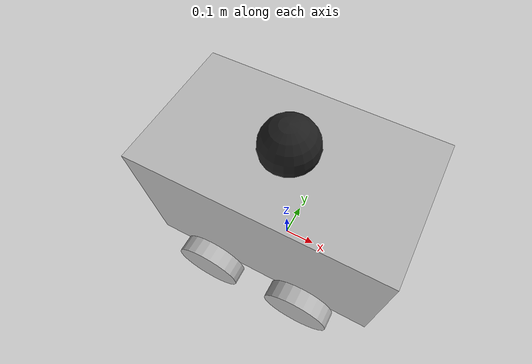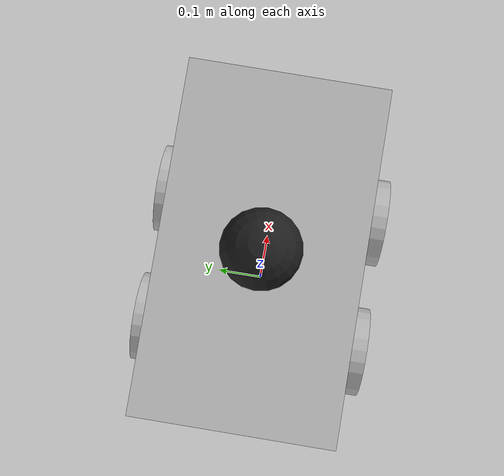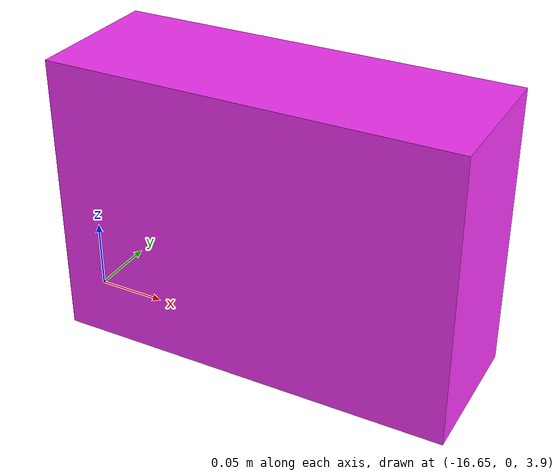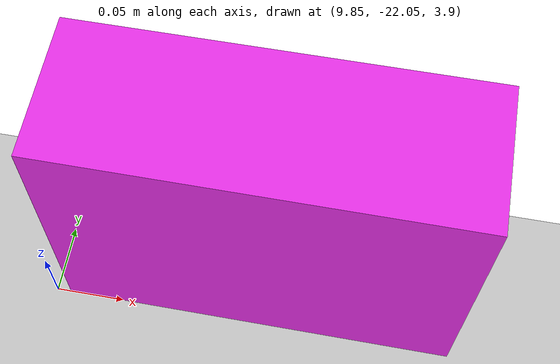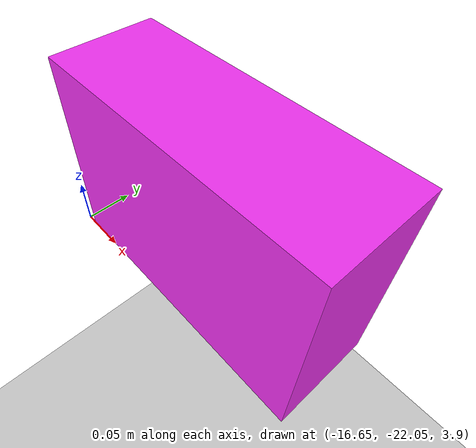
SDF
<sdf version="1.7">
 <world name="default">
  <gravity>0 0 -9.8</gravity>
  <physics name="default_physics" default="0" type="ode">
   <max_step_size>0.001</max_step_size>
   <real_time_factor>1</real_time_factor>
   <real_time_update_rate>1000</real_time_update_rate>
  </physics>
  <plugin name="gazebo_ros_state" filename="libgazebo_ros_state.so">
   <ros><namespace>/gazebo</namespace></ros>
   <update_rate>10.0</update_rate>
  </plugin>
  <magnetic_field>6e-06 2.3e-05 -4.2e-05</magnetic_field>
  <atmosphere type="adiabatic"/>
  <scene><ambient>0.4 0.4 0.4 1</ambient><background>0.7 0.7 0.7 1</background><shadows>1</shadows></scene>
  <audio><device>default</device></audio>
  <spherical_coordinates>
   <surface_model>EARTH_WGS84</surface_model>
   <latitude_deg>0</latitude_deg>
   <longitude_deg>0</longitude_deg>
   <elevation>0</elevation>
   <heading_deg>0</heading_deg>
  </spherical_coordinates>
  <model name="ground_plane">
   <static>1</static>
   <link name="link">
    <collision name="collision">
     <geometry><plane><normal>0 0 1</normal><size>100 100</size></plane></geometry>
     <surface><friction><ode><mu>100</mu><mu2>50</mu2></ode></friction></surface>
    </collision>
    <visual name="visual">
     <cast_shadows>0</cast_shadows>
     <geometry><plane><normal>0 0 1</normal><size>100 100</size></plane></geometry>
     <material>
      <script><uri>file://media/materials/scripts/gazebo.material</uri><name>Gazebo/Grey</name></script>
     </material>
    </visual>
   </link>
   <pose>-2.36225 2.26229 0 0 -0 0</pose>
  </model>
  <model name="uwb_tag_A01">
   <static>1</static>
   <pose>-16.5 -22.0 4.0 0 0 0</pose>
   <link name="tag">
    <visual name="visual">
     <geometry><box><size>0.28 0.10 0.20</size></box></geometry>
     <material>
      <ambient>0.95 0.20 0.95 1</ambient>
      <diffuse>0.95 0.20 0.95 1</diffuse>
      <emissive>0.20 0.02 0.20 1</emissive>
     </material>
    </visual>
   </link>
  </model>
  <model name="uwb_tag_A02">
   <static>1</static>
   <pose>-3.0 -22.0 4.0 0 0 0</pose>
   <link name="tag">
    <visual name="visual">
     <geometry><box><size>0.28 0.10 0.20</size></box></geometry>
     <material>
      <ambient>0.95 0.20 0.95 1</ambient>
      <diffuse>0.95 0.20 0.95 1</diffuse>
      <emissive>0.20 0.02 0.20 1</emissive>
     </material>
    </visual>
   </link>
  </model>
  <model name="uwb_tag_A03">
   <static>1</static>
   <pose>10.0 -22.0 4.0 0 0 0</pose>
   <link name="tag">
    <visual name="visual">
     <geometry><box><size>0.28 0.10 0.20</size></box></geometry>
     <material>
      <ambient>0.95 0.20 0.95 1</ambient>
      <diffuse>0.95 0.20 0.95 1</diffuse>
      <emissive>0.20 0.02 0.20 1</emissive>
     </material>
    </visual>
   </link>
  </model>
  <model name="uwb_tag_A04">
   <static>1</static>
   <pose>-16.5 0.0 4.0 0 0 0</pose>
   <link name="tag">
    <visual name="visual">
     <geometry><box><size>0.28 0.10 0.20</size></box></geometry>
     <material>
      <ambient>0.95 0.20 0.95 1</ambient>
      <diffuse>0.95 0.20 0.95 1</diffuse>
      <emissive>0.20 0.02 0.20 1</emissive>
     </material>
    </visual>
   </link>
  </model>
  <model name="uwb_tag_A05">
   <static>1</static>
   <pose>10.0 0.0 4.0 0 0 0</pose>
   <link name="tag">
    <visual name="visual">
     <geometry><box><size>0.28 0.10 0.20</size></box></geometry>
     <material>
      <ambient>0.95 0.20 0.95 1</ambient>
      <diffuse>0.95 0.20 0.95 1</diffuse>
      <emissive>0.20 0.02 0.20 1</emissive>
     </material>
    </visual>
   </link>
  </model>
  <model name="uwb_tag_A06">
   <static>1</static>
   <pose>-16.5 21.0 4.0 0 0 0</pose>
   <link name="tag">
    <visual name="visual">
     <geometry><box><size>0.28 0.10 0.20</size></box></geometry>
     <material>
      <ambient>0.95 0.20 0.95 1</ambient>
      <diffuse>0.95 0.20 0.95 1</diffuse>
      <emissive>0.20 0.02 0.20 1</emissive>
     </material>
    </visual>
   </link>
  </model>
  <model name="uwb_tag_A07">
   <static>1</static>
   <pose>-3.0 21.0 4.0 0 0 0</pose>
   <link name="tag">
    <visual name="visual">
     <geometry><box><size>0.28 0.10 0.20</size></box></geometry>
     <material>
      <ambient>0.95 0.20 0.95 1</ambient>
      <diffuse>0.95 0.20 0.95 1</diffuse>
      <emissive>0.20 0.02 0.20 1</emissive>
     </material>
    </visual>
   </link>
  </model>
  <model name="uwb_tag_A08">
   <static>1</static>
   <pose>10.0 21.0 4.0 0 0 0</pose>
   <link name="tag">
    <visual name="visual">
     <geometry><box><size>0.28 0.10 0.20</size></box></geometry>
     <material>
      <ambient>0.95 0.20 0.95 1</ambient>
      <diffuse>0.95 0.20 0.95 1</diffuse>
      <emissive>0.20 0.02 0.20 1</emissive>
     </material>
    </visual>
   </link>
  </model>
  <light name="sun" type="directional">
   <pose>8.50524 13.8183 10 0 -0 0</pose>
   <diffuse>0.8 0.8 0.8 1</diffuse>
   <specular>0.2 0.2 0.2 1</specular>
   <attenuation>
    <range>1000</range>
    <constant>0.9</constant>
    <linear>0.01</linear>
    <quadratic>0.001</quadratic>
   </attenuation>
   <direction>-0.5 0.1 -0.9</direction>
   <spot><inner_angle>0</inner_angle><outer_angle>0</outer_angle><falloff>0</falloff></spot>
  </light>
  <model name="my_robot">
   <link name="base_footprint">
    <inertial>
     <pose>0 0 0.305366 0 -0 0</pose>
     <mass>6.15</mass>
     <inertia><ixx>0.167483</ixx><ixy>0</ixy><ixz>0</ixz><iyy>0.167483</iyy><iyz>0</iyz><izz>0.1604</izz></inertia>
    </inertial>
    <collision name="base_footprint_fixed_joint_lump__base_link_collision">
     <pose>0 0 0.3 0 -0 0</pose>
     <geometry><box><size>0.4 0.4 0.4</size></box></geometry>
    </collision>
    <collision name="base_footprint_fixed_joint_lump__lidar_link_collision_1">
     <pose>0 0 0.52 0 -0 0</pose>
     <geometry><sphere><radius>0.08</radius></sphere></geometry>
    </collision>
    <visual name="base_footprint_fixed_joint_lump__base_link_visual">
     <pose>0 0 0.3 0 -0 0</pose>
     <geometry><box><size>0.7 0.4 0.4</size></box></geometry>
    </visual>
    <visual name="base_footprint_fixed_joint_lump__lidar_link_visual_1">
     <pose>0 0 0.52 0 -0 0</pose>
     <geometry><sphere><radius>0.08</radius></sphere></geometry>
     <material>
      <script><name>Gazebo/Black</name><uri>file://media/materials/scripts/gazebo.material</uri></script>
     </material>
    </visual>
    <sensor name="imu_sensor" type="imu">
     <always_on>1</always_on>
     <update_rate>100</update_rate>
     <visualize>0</visualize>
     <plugin name="imu_plugin" filename="libgazebo_ros_imu_sensor.so">
      <ros><remapping>~/out:=imu/data</remapping></ros>
      <initial_orientation_as_reference>0</initial_orientation_as_reference>
     </plugin>
     <pose>0 0 0.3 0 -0 0</pose>
    </sensor>
    <sensor name="lidar_3d_sensor" type="gpu_ray">
     <visualize>0</visualize>
     <update_rate>10</update_rate>
     <ray>
      <scan>
       <horizontal>
        <samples>720</samples>
        <resolution>1</resolution>
        <min_angle>-3.14159</min_angle>
        <max_angle>3.14159</max_angle>
       </horizontal>
       <vertical>
        <samples>64</samples>
        <resolution>1</resolution>
        <min_angle>-0.523599</min_angle>
        <max_angle>0.785398</max_angle>
       </vertical>
      </scan>
      <range><min>0.4</min><max>12</max><resolution>0.02</resolution></range>
      <noise><type>gaussian</type><mean>0</mean><stddev>0.01</stddev></noise>
     </ray>
     <plugin name="gazebo_ros_lidar_3d" filename="libgazebo_ros_ray_sensor.so">
      <ros><remapping>~/out:=/points</remapping></ros>
      <output_type>sensor_msgs/PointCloud2</output_type>
      <frame_name>lidar_link</frame_name>
     </plugin>
     <pose>0 0 0.52 0 -0 0</pose>
    </sensor>
   </link>
   <joint name="front_left_wheel_joint" type="revolute">
    <pose relative_to="base_footprint">0.15 0.235 0.1 0 -0 0</pose>
    <parent>base_footprint</parent>
    <child>front_left_wheel</child>
    <axis>
     <xyz>0 1 0</xyz>
     <limit><lower>-1e+16</lower><upper>1e+16</upper></limit>
     <dynamics>
      <damping>0.01</damping>
      <friction>0</friction>
      <spring_reference>0</spring_reference>
      <spring_stiffness>0</spring_stiffness>
     </dynamics>
    </axis>
   </joint>
   <link name="front_left_wheel">
    <pose relative_to="front_left_wheel_joint">0 0 0 0 -0 0</pose>
    <inertial>
     <mass>0.5</mass>
     <inertia>
      <ixx>0.00135417</ixx>
      <ixy>0</ixy>
      <ixz>0</ixz>
      <iyy>0.00135417</iyy>
      <iyz>0</iyz>
      <izz>0.0025</izz>
     </inertia>
    </inertial>
    <collision name="front_left_wheel_collision">
     <pose>0 0 0 1.5708 -0 0</pose>
     <geometry><cylinder><length>0.05</length><radius>0.1</radius></cylinder></geometry>
     <surface>
      <contact><ode><kp>100000</kp><kd>50</kd><max_vel>0.1</max_vel><min_depth>0.001</min_depth></ode></contact>
      <friction><ode><mu>0.05</mu><mu2>0.05</mu2></ode></friction>
     </surface>
    </collision>
    <visual name="front_left_wheel_visual">
     <pose>0 0 0 1.5708 -0 0</pose>
     <geometry><cylinder><length>0.05</length><radius>0.1</radius></cylinder></geometry>
    </visual>
   </link>
   <joint name="front_right_wheel_joint" type="revolute">
    <pose relative_to="base_footprint">0.15 -0.235 0.1 0 -0 0</pose>
    <parent>base_footprint</parent>
    <child>front_right_wheel</child>
    <axis>
     <xyz>0 1 0</xyz>
     <limit><lower>-1e+16</lower><upper>1e+16</upper></limit>
     <dynamics>
      <damping>0.01</damping>
      <friction>0</friction>
      <spring_reference>0</spring_reference>
      <spring_stiffness>0</spring_stiffness>
     </dynamics>
    </axis>
   </joint>
   <link name="front_right_wheel">
    <pose relative_to="front_right_wheel_joint">0 0 0 0 -0 0</pose>
    <inertial>
     <mass>0.5</mass>
     <inertia>
      <ixx>0.00135417</ixx>
      <ixy>0</ixy>
      <ixz>0</ixz>
      <iyy>0.00135417</iyy>
      <iyz>0</iyz>
      <izz>0.0025</izz>
     </inertia>
    </inertial>
    <collision name="front_right_wheel_collision">
     <pose>0 0 0 1.5708 -0 0</pose>
     <geometry><cylinder><length>0.05</length><radius>0.1</radius></cylinder></geometry>
     <surface>
      <contact><ode><kp>100000</kp><kd>50</kd><max_vel>0.1</max_vel><min_depth>0.001</min_depth></ode></contact>
      <friction><ode><mu>0.05</mu><mu2>0.05</mu2></ode></friction>
     </surface>
    </collision>
    <visual name="front_right_wheel_visual">
     <pose>0 0 0 1.5708 -0 0</pose>
     <geometry><cylinder><length>0.05</length><radius>0.1</radius></cylinder></geometry>
    </visual>
   </link>
   <joint name="rear_left_wheel_joint" type="revolute">
    <pose relative_to="base_footprint">-0.15 0.235 0.1 0 -0 0</pose>
    <parent>base_footprint</parent>
    <child>rear_left_wheel</child>
    <axis>
     <xyz>0 1 0</xyz>
     <limit><lower>-1e+16</lower><upper>1e+16</upper></limit>
     <dynamics>
      <damping>0.1</damping>
      <friction>0.01</friction>
      <spring_reference>0</spring_reference>
      <spring_stiffness>0</spring_stiffness>
     </dynamics>
    </axis>
   </joint>
   <link name="rear_left_wheel">
    <pose relative_to="rear_left_wheel_joint">0 0 0 0 -0 0</pose>
    <inertial>
     <mass>0.5</mass>
     <inertia>
      <ixx>0.00135417</ixx>
      <ixy>0</ixy>
      <ixz>0</ixz>
      <iyy>0.00135417</iyy>
      <iyz>0</iyz>
      <izz>0.0025</izz>
     </inertia>
    </inertial>
    <collision name="rear_left_wheel_collision">
     <pose>0 0 0 1.5708 -0 0</pose>
     <geometry><cylinder><length>0.05</length><radius>0.1</radius></cylinder></geometry>
     <surface>
      <contact><ode><kp>100000</kp><kd>100</kd><max_vel>0.1</max_vel><min_depth>0.001</min_depth></ode></contact>
      <friction><ode><mu>2</mu><mu2>2</mu2></ode></friction>
     </surface>
    </collision>
    <visual name="rear_left_wheel_visual">
     <pose>0 0 0 1.5708 -0 0</pose>
     <geometry><cylinder><length>0.05</length><radius>0.1</radius></cylinder></geometry>
    </visual>
   </link>
   <joint name="rear_right_wheel_joint" type="revolute">
    <pose relative_to="base_footprint">-0.15 -0.235 0.1 0 -0 0</pose>
    <parent>base_footprint</parent>
    <child>rear_right_wheel</child>
    <axis>
     <xyz>0 1 0</xyz>
     <limit><lower>-1e+16</lower><upper>1e+16</upper></limit>
     <dynamics>
      <damping>0.1</damping>
      <friction>0.1</friction>
      <spring_reference>0</spring_reference>
      <spring_stiffness>0</spring_stiffness>
     </dynamics>
    </axis>
   </joint>
   <link name="rear_right_wheel">
    <pose relative_to="rear_right_wheel_joint">0 0 0 0 -0 0</pose>
    <inertial>
     <mass>0.5</mass>
     <inertia>
      <ixx>0.00135417</ixx>
      <ixy>0</ixy>
      <ixz>0</ixz>
      <iyy>0.00135417</iyy>
      <iyz>0</iyz>
      <izz>0.0025</izz>
     </inertia>
    </inertial>
    <collision name="rear_right_wheel_collision">
     <pose>0 0 0 1.5708 -0 0</pose>
     <geometry><cylinder><length>0.05</length><radius>0.1</radius></cylinder></geometry>
     <surface>
      <contact><ode><kp>100000</kp><kd>100</kd><max_vel>0.1</max_vel><min_depth>0.001</min_depth></ode></contact>
      <friction><ode><mu>2</mu><mu2>2</mu2></ode></friction>
     </surface>
    </collision>
    <visual name="rear_right_wheel_visual">
     <pose>0 0 0 1.5708 -0 0</pose>
     <geometry><cylinder><length>0.05</length><radius>0.1</radius></cylinder></geometry>
    </visual>
   </link>
   <plugin name="rear_diff_drive" filename="libgazebo_ros_diff_drive.so">
    <update_rate>100</update_rate>
    <num_wheel_pairs>1</num_wheel_pairs>
    <left_joint>rear_left_wheel_joint</left_joint>
    <right_joint>rear_right_wheel_joint</right_joint>
    <wheel_separation>0.47</wheel_separation>
    <wheel_diameter>0.2</wheel_diameter>
    <max_wheel_torque>80</max_wheel_torque>
    <max_wheel_acceleration>6</max_wheel_acceleration>
    <covariance_x>0.0001</covariance_x>
    <covariance_y>0.0001</covariance_y>
    <covariance_yaw>0.01</covariance_yaw>
    <publish_odom>1</publish_odom>
    <publish_odom_tf>1</publish_odom_tf>
    <publish_wheel_tf>0</publish_wheel_tf>
    <odometry_source>0</odometry_source>
    <odometry_frame>odom</odometry_frame>
    <robot_base_frame>base_footprint</robot_base_frame>
   </plugin>
   <static>0</static>
   <plugin name="wheel_encoder_plugin" filename="libgazebo_ros_joint_state_publisher.so">
    <update_rate>100.0</update_rate>
    <joint_name>front_left_wheel_joint</joint_name>
    <joint_name>front_right_wheel_joint</joint_name>
    <joint_name>rear_left_wheel_joint</joint_name>
    <joint_name>rear_right_wheel_joint</joint_name>
   </plugin>
   <pose>0.009181 2e-06 -0.001099 0 -0 3e-06</pose>
  </model>
 </world>
</sdf>
